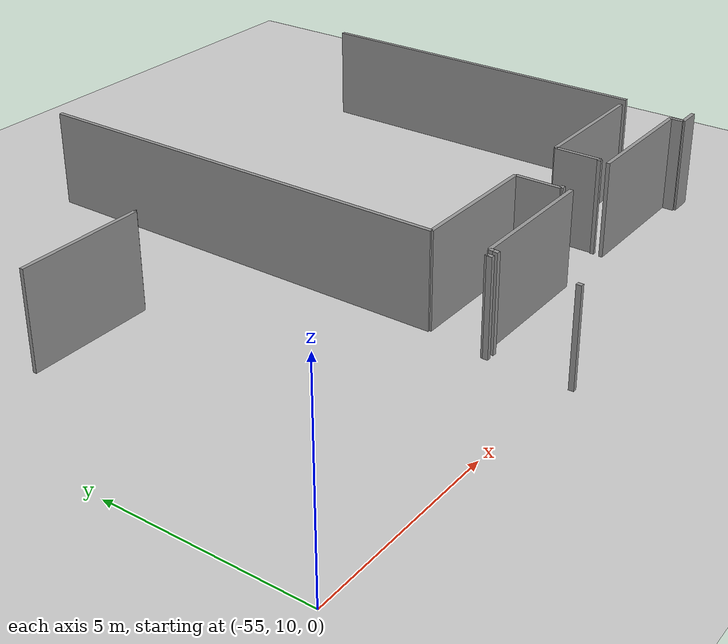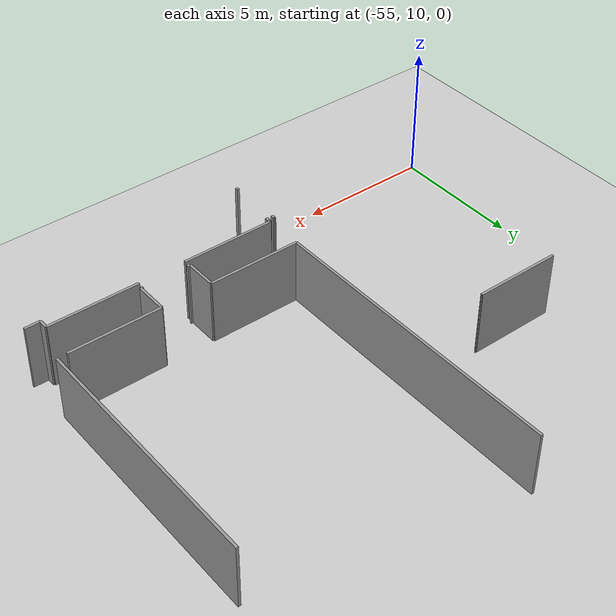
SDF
<sdf version="1.6">
 <world name="default">
  <model name="ground_plane">
   <static>1</static>
   <link name="link">
    <collision name="collision">
     <geometry><plane><normal>0 0 1</normal><size>100 100</size></plane></geometry>
     <surface><friction><ode><mu>100</mu><mu2>50</mu2></ode></friction></surface>
    </collision>
    <visual name="visual">
     <cast_shadows>0</cast_shadows>
     <geometry><plane><normal>0 0 1</normal><size>100 100</size></plane></geometry>
     <material>
      <script><uri>file://media/materials/scripts/gazebo.material</uri><name>Gazebo/Grey</name></script>
     </material>
    </visual>
   </link>
  </model>
  <model name="50045368">
   <static>1</static>
   <link name="Wall_6">
    <collision name="Wall_6_Collision">
     <geometry><box><size>11.381956798 0.1 2.5</size></box></geometry>
     <pose>5.69097839898 0 1.25 0 0 0</pose>
    </collision>
    <visual name="Wall_6_Visual">
     <pose>5.69097839898 0 1.25 0 0 0</pose>
     <geometry><box><size>11.381956798 0.1 2.5</size></box></geometry>
     <material>
      <script><uri>file://media/materials/scripts/gazebo.material</uri><name>Gazebo/Grey</name></script>
      <ambient>1 1 1 1</ambient>
     </material>
    </visual>
    <pose>6.27445997459 -12.209021601 0 0 0 1.57079632679</pose>
   </link>
   <link name="Wall_16">
    <collision name="Wall_16_Collision">
     <geometry><box><size>3.46493011436 0.1 2.5</size></box></geometry>
     <pose>1.73246505718 0 1.25 0 0 0</pose>
    </collision>
    <visual name="Wall_16_Visual">
     <pose>1.73246505718 0 1.25 0 0 0</pose>
     <geometry><box><size>3.46493011436 0.1 2.5</size></box></geometry>
     <material>
      <script><uri>file://media/materials/scripts/gazebo.material</uri><name>Gazebo/Grey</name></script>
      <ambient>1 1 1 1</ambient>
     </material>
    </visual>
    <pose>15.1712833545 -12.2092757306 0 0 0 3.14159265359</pose>
   </link>
   <link name="Wall_17">
    <collision name="Wall_17_Collision">
     <geometry><box><size>1.2124523507 0.1 2.5</size></box></geometry>
     <pose>0.606226175349 0 1.25 0 0 0</pose>
    </collision>
    <visual name="Wall_17_Visual">
     <pose>0.606226175349 0 1.25 0 0 0</pose>
     <geometry><box><size>1.2124523507 0.1 2.5</size></box></geometry>
     <material>
      <script><uri>file://media/materials/scripts/gazebo.material</uri><name>Gazebo/Grey</name></script>
      <ambient>1 1 1 1</ambient>
     </material>
    </visual>
    <pose>11.7063532402 -12.2092757306 0 0 0 -1.57079632679</pose>
   </link>
   <link name="Wall_18">
    <collision name="Wall_18_Collision">
     <geometry><box><size>0.0837357052097 0.1 2.5</size></box></geometry>
     <pose>0.0418678526048 0 1.25 0 0 0</pose>
    </collision>
    <visual name="Wall_18_Visual">
     <pose>0.0418678526048 0 1.25 0 0 0</pose>
     <geometry><box><size>0.0837357052097 0.1 2.5</size></box></geometry>
     <material>
      <script><uri>file://media/materials/scripts/gazebo.material</uri><name>Gazebo/Grey</name></script>
      <ambient>1 1 1 1</ambient>
     </material>
    </visual>
    <pose>11.7063532402 -13.4217280813 0 0 0 3.14159265359</pose>
   </link>
   <link name="Wall_19">
    <collision name="Wall_19_Collision">
     <geometry><box><size>0.116391359593 0.1 2.5</size></box></geometry>
     <pose>0.0581956797967 0 1.25 0 0 0</pose>
    </collision>
    <visual name="Wall_19_Visual">
     <pose>0.0581956797967 0 1.25 0 0 0</pose>
     <geometry><box><size>0.116391359593 0.1 2.5</size></box></geometry>
     <material>
      <script><uri>file://media/materials/scripts/gazebo.material</uri><name>Gazebo/Grey</name></script>
      <ambient>1 1 1 1</ambient>
     </material>
    </visual>
    <pose>9.89059720457 -13.4217280813 0 0 0 3.14159265359</pose>
   </link>
   <link name="Wall_20">
    <collision name="Wall_20_Collision">
     <geometry><box><size>1.20216010165 0.1 2.5</size></box></geometry>
     <pose>0.601080050826 0 1.25 0 0 0</pose>
    </collision>
    <visual name="Wall_20_Visual">
     <pose>0.601080050826 0 1.25 0 0 0</pose>
     <geometry><box><size>1.20216010165 0.1 2.5</size></box></geometry>
     <material>
      <script><uri>file://media/materials/scripts/gazebo.material</uri><name>Gazebo/Grey</name></script>
      <ambient>1 1 1 1</ambient>
     </material>
    </visual>
    <pose>9.77420584498 -13.4217280813 0 0 0 1.57079632679</pose>
   </link>
   <link name="Wall_21">
    <collision name="Wall_21_Collision">
     <geometry><box><size>3.49976176095 0.1 2.5</size></box></geometry>
     <pose>1.74988088048 0 1.25 0 0 0</pose>
    </collision>
    <visual name="Wall_21_Visual">
     <pose>1.74988088048 0 1.25 0 0 0</pose>
     <geometry><box><size>3.49976176095 0.1 2.5</size></box></geometry>
     <material>
      <script><uri>file://media/materials/scripts/gazebo.material</uri><name>Gazebo/Grey</name></script>
      <ambient>1 1 1 1</ambient>
     </material>
    </visual>
    <pose>9.77420584498 -12.2195679797 0 0 0 3.13857919286</pose>
   </link>
   <link name="Wall_23">
    <collision name="Wall_23_Collision">
     <geometry><box><size>3.26988564168 0.1 2.5</size></box></geometry>
     <pose>1.63494282084 0 1.25 0 0 0</pose>
    </collision>
    <visual name="Wall_23_Visual">
     <pose>1.63494282084 0 1.25 0 0 0</pose>
     <geometry><box><size>3.26988564168 0.1 2.5</size></box></geometry>
     <material>
      <script><uri>file://media/materials/scripts/gazebo.material</uri><name>Gazebo/Grey</name></script>
      <ambient>1 1 1 1</ambient>
     </material>
    </visual>
    <pose>0.00368487928844 -6.3918678526 0 0 0 0.0</pose>
   </link>
   <link name="Wall_24">
    <collision name="Wall_24_Collision">
     <geometry><box><size>0.0315120711563 0.1 2.5</size></box></geometry>
     <pose>0.0157560355781 0 1.25 0 0 0</pose>
    </collision>
    <visual name="Wall_24_Visual">
     <pose>0.0157560355781 0 1.25 0 0 0</pose>
     <geometry><box><size>0.0315120711563 0.1 2.5</size></box></geometry>
     <material>
      <script><uri>file://media/materials/scripts/gazebo.material</uri><name>Gazebo/Grey</name></script>
      <ambient>1 1 1 1</ambient>
     </material>
    </visual>
    <pose>3.27357052097 -6.3918678526 0 0 0 1.57079632679</pose>
   </link>
   <link name="Wall_28">
    <collision name="Wall_28_Collision">
     <geometry><box><size>0.0430749682338 0.1 2.5</size></box></geometry>
     <pose>0.0215374841169 0 1.25 0 0 0</pose>
    </collision>
    <visual name="Wall_28_Visual">
     <pose>0.0215374841169 0 1.25 0 0 0</pose>
     <geometry><box><size>0.0430749682338 0.1 2.5</size></box></geometry>
     <material>
      <script><uri>file://media/materials/scripts/gazebo.material</uri><name>Gazebo/Grey</name></script>
      <ambient>1 1 1 1</ambient>
     </material>
    </visual>
    <pose>5.97814485388 -13.766454892 0 0 0 0.0</pose>
   </link>
   <link name="Wall_29">
    <collision name="Wall_29_Collision">
     <geometry><box><size>0.137229987294 0.1 2.5</size></box></geometry>
     <pose>0.0686149936468 0 1.25 0 0 0</pose>
    </collision>
    <visual name="Wall_29_Visual">
     <pose>0.0686149936468 0 1.25 0 0 0</pose>
     <geometry><box><size>0.137229987294 0.1 2.5</size></box></geometry>
     <material>
      <script><uri>file://media/materials/scripts/gazebo.material</uri><name>Gazebo/Grey</name></script>
      <ambient>1 1 1 1</ambient>
     </material>
    </visual>
    <pose>6.02121982211 -13.766454892 0 0 0 -1.57079632679</pose>
   </link>
   <link name="Wall_30">
    <collision name="Wall_30_Collision">
     <geometry><box><size>0.12998729352 0.1 2.5</size></box></geometry>
     <pose>0.0649936467598 0 1.25 0 0 0</pose>
    </collision>
    <visual name="Wall_30_Visual">
     <pose>0.0649936467598 0 1.25 0 0 0</pose>
     <geometry><box><size>0.12998729352 0.1 2.5</size></box></geometry>
     <material>
      <script><uri>file://media/materials/scripts/gazebo.material</uri><name>Gazebo/Grey</name></script>
      <ambient>1 1 1 1</ambient>
     </material>
    </visual>
    <pose>6.02121982211 -15.8470139771 0 0 0 -1.57079632679</pose>
   </link>
   <link name="Wall_35">
    <collision name="Wall_35_Collision">
     <geometry><box><size>9.26772554003 0.1 2.5</size></box></geometry>
     <pose>4.63386277001 0 1.25 0 0 0</pose>
    </collision>
    <visual name="Wall_35_Visual">
     <pose>4.63386277001 0 1.25 0 0 0</pose>
     <geometry><box><size>9.26772554003 0.1 2.5</size></box></geometry>
     <material>
      <script><uri>file://media/materials/scripts/gazebo.material</uri><name>Gazebo/Grey</name></script>
      <ambient>1 1 1 1</ambient>
     </material>
    </visual>
    <pose>15.540660737 -12.192884371 0 0 0 1.57079632679</pose>
   </link>
   <link name="Wall_115">
    <collision name="Wall_115_Collision">
     <geometry><box><size>0.101143583227 0.1 2.5</size></box></geometry>
     <pose>0.0505717916137 0 1.25 0 0 0</pose>
    </collision>
    <visual name="Wall_115_Visual">
     <pose>0.0505717916137 0 1.25 0 0 0</pose>
     <geometry><box><size>0.101143583227 0.1 2.5</size></box></geometry>
     <material>
      <script><uri>file://media/materials/scripts/gazebo.material</uri><name>Gazebo/Grey</name></script>
      <ambient>1 1 1 1</ambient>
     </material>
    </visual>
    <pose>6.26188055909 -13.7695044473 0 0 0 1.57079632679</pose>
   </link>
   <link name="Wall_116">
    <collision name="Wall_116_Collision">
     <geometry><box><size>3.55362134689 0.1 2.5</size></box></geometry>
     <pose>1.77681067344 0 1.25 0 0 0</pose>
    </collision>
    <visual name="Wall_116_Visual">
     <pose>1.77681067344 0 1.25 0 0 0</pose>
     <geometry><box><size>3.55362134689 0.1 2.5</size></box></geometry>
     <material>
      <script><uri>file://media/materials/scripts/gazebo.material</uri><name>Gazebo/Grey</name></script>
      <ambient>1 1 1 1</ambient>
     </material>
    </visual>
    <pose>6.26188055909 -13.668360864 0 0 0 0.0</pose>
   </link>
   <link name="Wall_117">
    <collision name="Wall_117_Collision">
     <geometry><box><size>3.45349428208 0.1 2.5</size></box></geometry>
     <pose>1.72674714104 0 1.25 0 0 0</pose>
    </collision>
    <visual name="Wall_117_Visual">
     <pose>1.72674714104 0 1.25 0 0 0</pose>
     <geometry><box><size>3.45349428208 0.1 2.5</size></box></geometry>
     <material>
      <script><uri>file://media/materials/scripts/gazebo.material</uri><name>Gazebo/Grey</name></script>
      <ambient>1 1 1 1</ambient>
     </material>
    </visual>
    <pose>11.6085133418 -13.668360864 0 0 0 0.0</pose>
   </link>
   <link name="Wall_118">
    <collision name="Wall_118_Collision">
     <geometry><box><size>0.343710292249 0.1 2.5</size></box></geometry>
     <pose>0.171855146125 0 1.25 0 0 0</pose>
    </collision>
    <visual name="Wall_118_Visual">
     <pose>0.171855146125 0 1.25 0 0 0</pose>
     <geometry><box><size>0.343710292249 0.1 2.5</size></box></geometry>
     <material>
      <script><uri>file://media/materials/scripts/gazebo.material</uri><name>Gazebo/Grey</name></script>
      <ambient>1 1 1 1</ambient>
     </material>
    </visual>
    <pose>15.0620076239 -13.668360864 0 0 0 -1.57079632679</pose>
   </link>
   <link name="Wall_119">
    <collision name="Wall_119_Collision">
     <geometry><box><size>0.588691232529 0.1 2.5</size></box></geometry>
     <pose>0.294345616264 0 1.25 0 0 0</pose>
    </collision>
    <visual name="Wall_119_Visual">
     <pose>0.294345616264 0 1.25 0 0 0</pose>
     <geometry><box><size>0.588691232529 0.1 2.5</size></box></geometry>
     <material>
      <script><uri>file://media/materials/scripts/gazebo.material</uri><name>Gazebo/Grey</name></script>
      <ambient>1 1 1 1</ambient>
     </material>
    </visual>
    <pose>15.0620076239 -14.0120711563 0 0 0 0.0</pose>
   </link>
   <link name="Wall_169">
    <collision name="Wall_169_Collision">
     <geometry><box><size>0.137010153818 0.1 2.5</size></box></geometry>
     <pose>0.0685050769092 0 1.25 0 0 0</pose>
    </collision>
    <visual name="Wall_169_Visual">
     <pose>0.0685050769092 0 1.25 0 0 0</pose>
     <geometry><box><size>0.137010153818 0.1 2.5</size></box></geometry>
     <material>
      <script><uri>file://media/materials/scripts/gazebo.material</uri><name>Gazebo/Grey</name></script>
      <ambient>1 1 1 1</ambient>
     </material>
    </visual>
    <pose>6.2459974587 -13.9055908513 0 0 0 1.45460864173</pose>
   </link>
   <pose>-52.8 25.6383100381 0 0 0 0</pose>
  </model>
 </world>
</sdf>
